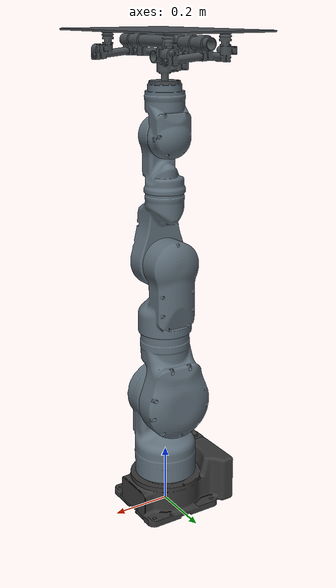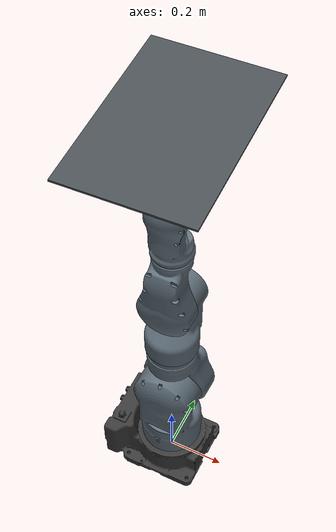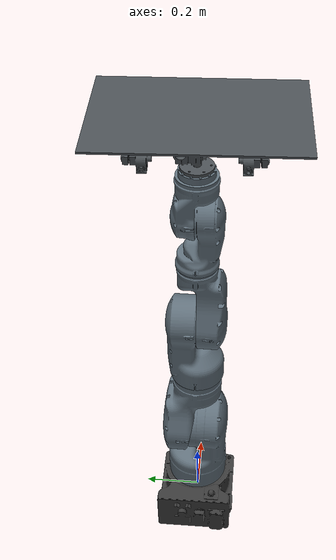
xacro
<?xml version="1.0" ?>
<robot name="fproject" xmlns:xacro="http://www.ros.org/wiki/xacro">

<xacro:include filename="$(find fproject_description)/urdf/materials.xacro" />
<xacro:include filename="$(find fproject_description)/urdf/fproject.trans" />
<xacro:include filename="$(find fproject_description)/urdf/fproject.gazebo" />
<link name="base_link">
  <inertial>
    <origin xyz="-0.05796760733920991 -0.0012263345459982132 0.062432721134351825" rpy="0 0 0"/>
    <mass value="9.976264079968857"/>
    <inertia ixx="0.065261" iyy="0.117827" izz="0.148661" ixy="-0.001803" iyz="0.000242" ixz="0.011803"/>
  </inertial>
  <visual>
    <origin xyz="0 0 0" rpy="0 0 0"/>
    <geometry>
      <mesh filename="package://fproject_description/meshes/base_link.stl" scale="0.001 0.001 0.001"/>
    </geometry>
    <material name="gray"/>
  </visual>
  <collision>
    <origin xyz="0 0 0" rpy="0 0 0"/>
    <geometry>
      <mesh filename="package://fproject_description/meshes/base_link.stl" scale="0.001 0.001 0.001"/>
    </geometry>
  </collision>
</link>

<link name="body_1_1">
  <inertial>
    <origin xyz="-0.000367308565535005 -0.01662808191141437 0.1823188683811327" rpy="0 0 0"/>
    <mass value="11.497714058301398"/>
    <inertia ixx="0.176105" iyy="0.18006" izz="0.06039" ixy="8.4e-05" iyz="0.014313" ixz="0.000318"/>
  </inertial>
  <visual>
    <origin xyz="0.0 -0.0 -0.1145" rpy="0 0 0"/>
    <geometry>
      <mesh filename="package://fproject_description/meshes/body_1_1.stl" scale="0.001 0.001 0.001"/>
    </geometry>
    <material name="gray_blue"/>
  </visual>
  <collision>
    <origin xyz="0.0 -0.0 -0.1145" rpy="0 0 0"/>
    <geometry>
      <mesh filename="package://fproject_description/meshes/body_1_1.stl" scale="0.001 0.001 0.001"/>
    </geometry>
  </collision>
</link>

<link name="body_2_1">
  <inertial>
    <origin xyz="0.0005838482729470563 -0.007320451707786481 0.09964197410737119" rpy="0 0 0"/>
    <mass value="6.574002541524107"/>
    <inertia ixx="0.088142" iyy="0.090116" izz="0.034433" ixy="0.000203" iyz="0.022651" ixz="0.000128"/>
  </inertial>
  <visual>
    <origin xyz="-0.001068 -0.049088 -0.405" rpy="0 0 0"/>
    <geometry>
      <mesh filename="package://fproject_description/meshes/body_2_1.stl" scale="0.001 0.001 0.001"/>
    </geometry>
    <material name="gray_blue"/>
  </visual>
  <collision>
    <origin xyz="-0.001068 -0.049088 -0.405" rpy="0 0 0"/>
    <geometry>
      <mesh filename="package://fproject_description/meshes/body_2_1.stl" scale="0.001 0.001 0.001"/>
    </geometry>
  </collision>
</link>

<link name="body_3_1">
  <inertial>
    <origin xyz="0.0012098619191938814 0.028094340134804014 0.13050345181878154" rpy="0 0 0"/>
    <mass value="5.351720865390616"/>
    <inertia ixx="0.052634" iyy="0.052607" izz="0.019478" ixy="-6.4e-05" iyz="-0.00863" ixz="-0.000301"/>
  </inertial>
  <visual>
    <origin xyz="-0.00194 4.2e-05 -0.668893" rpy="0 0 0"/>
    <geometry>
      <mesh filename="package://fproject_description/meshes/body_3_1.stl" scale="0.001 0.001 0.001"/>
    </geometry>
    <material name="gray_blue"/>
  </visual>
  <collision>
    <origin xyz="-0.00194 4.2e-05 -0.668893" rpy="0 0 0"/>
    <geometry>
      <mesh filename="package://fproject_description/meshes/body_3_1.stl" scale="0.001 0.001 0.001"/>
    </geometry>
  </collision>
</link>

<link name="body_4_1">
  <inertial>
    <origin xyz="-0.00045697391099836816 -0.03278657661158527 0.0758456470965182" rpy="0 0 0"/>
    <mass value="4.233621983562027"/>
    <inertia ixx="0.041036" iyy="0.042855" izz="0.011567" ixy="3.3e-05" iyz="-0.005539" ixz="2.4e-05"/>
  </inertial>
  <visual>
    <origin xyz="-0.003587 0.001578 -0.894987" rpy="0 0 0"/>
    <geometry>
      <mesh filename="package://fproject_description/meshes/body_4_1.stl" scale="0.001 0.001 0.001"/>
    </geometry>
    <material name="gray_blue"/>
  </visual>
  <collision>
    <origin xyz="-0.003587 0.001578 -0.894987" rpy="0 0 0"/>
    <geometry>
      <mesh filename="package://fproject_description/meshes/body_4_1.stl" scale="0.001 0.001 0.001"/>
    </geometry>
  </collision>
</link>

<link name="body_5_1">
  <inertial>
    <origin xyz="-5.6565592709727826e-05 -0.02158418781731643 0.11395437772919936" rpy="0 0 0"/>
    <mass value="2.436526271475595"/>
    <inertia ixx="0.015014" iyy="0.014924" izz="0.004679" ixy="-4e-06" iyz="0.001893" ixz="7e-06"/>
  </inertial>
  <visual>
    <origin xyz="-0.003129 9.5e-05 -1.133986" rpy="0 0 0"/>
    <geometry>
      <mesh filename="package://fproject_description/meshes/body_5_1.stl" scale="0.001 0.001 0.001"/>
    </geometry>
    <material name="gray_blue"/>
  </visual>
  <collision>
    <origin xyz="-0.003129 9.5e-05 -1.133986" rpy="0 0 0"/>
    <geometry>
      <mesh filename="package://fproject_description/meshes/body_5_1.stl" scale="0.001 0.001 0.001"/>
    </geometry>
  </collision>
</link>

<link name="body_6_1">
  <inertial>
    <origin xyz="-0.00023230986799031373 0.001986271353622778 0.06917875596945255" rpy="0 0 0"/>
    <mass value="2.022663367724799"/>
    <inertia ixx="0.009784" iyy="0.00981" izz="0.004315" ixy="3e-06" iyz="0.002163" ixz="-2.5e-05"/>
  </inertial>
  <visual>
    <origin xyz="-0.002636 -0.015892 -1.314987" rpy="0 0 0"/>
    <geometry>
      <mesh filename="package://fproject_description/meshes/body_6_1.stl" scale="0.001 0.001 0.001"/>
    </geometry>
    <material name="gray_blue"/>
  </visual>
  <collision>
    <origin xyz="-0.002636 -0.015892 -1.314987" rpy="0 0 0"/>
    <geometry>
      <mesh filename="package://fproject_description/meshes/body_6_1.stl" scale="0.001 0.001 0.001"/>
    </geometry>
  </collision>
</link>

<link name="efec_final_1">
  <inertial>
    <origin xyz="0.0022456462663889556 0.0019008715218588415 0.12942756841537562" rpy="0 0 0"/>
    <mass value="2.659020110801838"/>
    <inertia ixx="0.070982" iyy="0.02983" izz="0.091801" ixy="0.001565" iyz="0.000655" ixz="-0.000228"/>
  </inertial>
  <visual>
    <origin xyz="-0.00275 0.000116 -1.481448" rpy="0 0 0"/>
    <geometry>
      <mesh filename="package://fproject_description/meshes/efec_final_1.stl" scale="0.001 0.001 0.001"/>
    </geometry>
    <material name="silver"/>
  </visual>
  <collision>
    <origin xyz="-0.00275 0.000116 -1.481448" rpy="0 0 0"/>
    <geometry>
      <mesh filename="package://fproject_description/meshes/efec_final_1.stl" scale="0.001 0.001 0.001"/>
    </geometry>
  </collision>
</link>

<joint name="joint_1" type="revolute">
  <origin xyz="0.0 0.0 0.1145" rpy="0 0 0"/>
  <parent link="base_link"/>
  <child link="body_1_1"/>
  <axis xyz="0.0 -0.0 1.0"/>
  <limit upper="3.141593" lower="-3.141593" effort="100" velocity="100"/>
</joint>

<joint name="joint_2" type="revolute">
  <origin xyz="0.001068 0.049088 0.2905" rpy="0 0 0"/>
  <parent link="body_1_1"/>
  <child link="body_2_1"/>
  <axis xyz="0.021747 0.999764 0.0"/>
  <limit upper="1.91286" lower="-1.91286" effort="100" velocity="100"/>
</joint>

<joint name="joint_3" type="revolute">
  <origin xyz="0.000872 -0.04913 0.263893" rpy="0 0 0"/>
  <parent link="body_2_1"/>
  <child link="body_3_1"/>
  <axis xyz="0.007351 -0.00016 0.999973"/>
  <limit upper="2.96706" lower="-2.96706" effort="100" velocity="100"/>
</joint>

<joint name="joint_4" type="revolute">
  <origin xyz="0.001647 -0.001536 0.226094" rpy="0 0 0"/>
  <parent link="body_3_1"/>
  <child link="body_4_1"/>
  <axis xyz="-0.009696 -0.999953 -8.9e-05"/>
  <limit upper="2.26892" lower="-2.26892" effort="100" velocity="100"/>
</joint>

<joint name="joint_5" type="revolute">
  <origin xyz="-0.000458 0.001483 0.238999" rpy="0 0 0"/>
  <parent link="body_4_1"/>
  <child link="body_5_1"/>
  <axis xyz="-0.001976 -6.9e-05 0.999998"/>
  <limit upper="3.141593" lower="-3.141593" effort="100" velocity="100"/>
</joint>

<joint name="joint_6" type="revolute">
  <origin xyz="-0.000493 0.015987 0.181001" rpy="0 0 0"/>
  <parent link="body_5_1"/>
  <child link="body_6_1"/>
  <axis xyz="-0.008481 0.999964 5.3e-05"/>
  <limit upper="1.91986" lower="-1.91986" effort="100" velocity="100"/>
</joint>

<joint name="joint_7" type="revolute">
  <origin xyz="0.000114 -0.016008 0.166461" rpy="0 0 0"/>
  <parent link="body_6_1"/>
  <child link="efec_final_1"/>
  <axis xyz="0.001737 -3.8e-05 0.999998"/>
  <limit upper="3.141593" lower="-3.141593" effort="100" velocity="100"/>
</joint>

</robot>

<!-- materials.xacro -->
<robot name="fproject" xmlns:xacro="http://www.ros.org/wiki/xacro" >

<material name="silver">
  <color rgba="0.286 0.309 0.325 1"/>
</material>
<material name="gray">
    <color rgba="0.22 0.22 0.22 1"/>
</material>
<material name="gray_blue">
    <color rgba="0.376 0.435 0.478 1"/>
</material>

</robot>

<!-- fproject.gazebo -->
<robot name="fproject" xmlns:xacro="http://www.ros.org/wiki/xacro" >

<xacro:property name="body_color" value="Gazebo/Silver" />

<gazebo>
  <plugin name="control" filename="libgazebo_ros_control.so"/>
</gazebo>
<gazebo reference="base_link">
  <material>${body_color}</material>
  <mu1>0.2</mu1>
  <mu2>0.2</mu2>
  <selfCollide>true</selfCollide>
  <gravity>true</gravity>
</gazebo>

<gazebo reference="body_1_1">
  <material>${body_color}</material>
  <mu1>0.2</mu1>
  <mu2>0.2</mu2>
  <selfCollide>true</selfCollide>
</gazebo>

<gazebo reference="body_2_1">
  <material>${body_color}</material>
  <mu1>0.2</mu1>
  <mu2>0.2</mu2>
  <selfCollide>true</selfCollide>
</gazebo>

<gazebo reference="body_3_1">
  <material>${body_color}</material>
  <mu1>0.2</mu1>
  <mu2>0.2</mu2>
  <selfCollide>true</selfCollide>
</gazebo>

<gazebo reference="body_4_1">
  <material>${body_color}</material>
  <mu1>0.2</mu1>
  <mu2>0.2</mu2>
  <selfCollide>true</selfCollide>
</gazebo>

<gazebo reference="body_5_1">
  <material>${body_color}</material>
  <mu1>0.2</mu1>
  <mu2>0.2</mu2>
  <selfCollide>true</selfCollide>
</gazebo>

<gazebo reference="body_6_1">
  <material>${body_color}</material>
  <mu1>0.2</mu1>
  <mu2>0.2</mu2>
  <selfCollide>true</selfCollide>
</gazebo>

<gazebo reference="efec_final_1">
  <material>${body_color}</material>
  <mu1>0.2</mu1>
  <mu2>0.2</mu2>
  <selfCollide>true</selfCollide>
</gazebo>

</robot>
